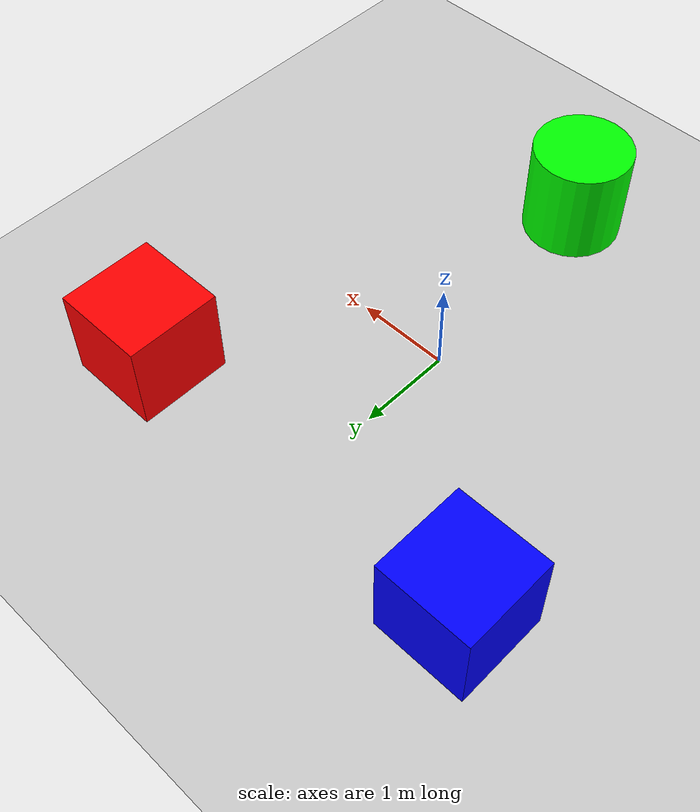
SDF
<?xml version="1.0" ?>
<sdf version="1.5">
  <world name="brett_world">
    <!-- A global light source -->
    <include>
      <uri>model://sun</uri>
    </include>

    <!-- A ground plane -->
    <include>
      <uri>model://ground_plane</uri>
    </include>

    <!-- An asphalt plane -->
    <include>
      <uri>model://asphalt_plane</uri>
    </include>

    <!-- Simple objects in the world -->

    <!-- A red box -->
    <model name="box1">
      <pose>2 2 0.5 0 0 0</pose>
      <link name="link">
        <collision name="collision">
          <geometry>
            <box>
              <size>1 1 1</size>
            </box>
          </geometry>
        </collision>
        <visual name="visual">
          <geometry>
            <box>
              <size>1 1 1</size>
            </box>
          </geometry>
          <material>
            <ambient>1 0 0 1</ambient> <!-- Red box -->
            <diffuse>1 0 0 1</diffuse>
          </material>
        </visual>
      </link>
    </model>

    <!-- A blue box -->
    <model name="box2">
      <pose>-2 2 0.5 0 0 0</pose>
      <link name="link">
        <collision name="collision">
          <geometry>
            <box>
              <size>1 1 1</size>
            </box>
          </geometry>
        </collision>
        <visual name="visual">
          <geometry>
            <box>
              <size>1 1 1</size>
            </box>
          </geometry>
          <material>
            <ambient>0 0 1 1</ambient> <!-- Blue box -->
            <diffuse>0 0 1 1</diffuse>
          </material>
        </visual>
      </link>
    </model>

    <!-- A green cylinder -->
    <model name="cylinder1">
      <pose>0 -2 1 0 0 0</pose>
      <link name="link">
        <collision name="collision">
          <geometry>
            <cylinder>
              <radius>0.5</radius>
              <length>1.0</length>
            </cylinder>
          </geometry>
        </collision>
        <visual name="visual">
          <geometry>
            <cylinder>
              <radius>0.5</radius>
              <length>1.0</length>
            </cylinder>
          </geometry>
          <material>
            <ambient>0 1 0 1</ambient> <!-- Green cylinder -->
            <diffuse>0 1 0 1</diffuse>
          </material>
        </visual>
      </link>
    </model>

    <!-- Physics configuration -->
    <physics name="default_physics" default="0" type="ode">
      <gravity>0 0 -9.8066</gravity>
      <ode>
        <solver>
          <type>quick</type>
          <iters>10</iters>
          <sor>1.3</sor>
          <use_dynamic_moi_rescaling>0</use_dynamic_moi_rescaling>
        </solver>
        <constraints>
          <cfm>0</cfm>
          <erp>0.2</erp>
          <contact_max_correcting_vel>100</contact_max_correcting_vel>
          <contact_surface_layer>0.001</contact_surface_layer>
        </constraints>
      </ode>
      <max_step_size>0.004</max_step_size>
      <real_time_factor>1</real_time_factor>
      <real_time_update_rate>250</real_time_update_rate>
      <magnetic_field>6.0e-6 2.3e-5 -4.2e-5</magnetic_field>
    </physics>

  </world>
</sdf>
